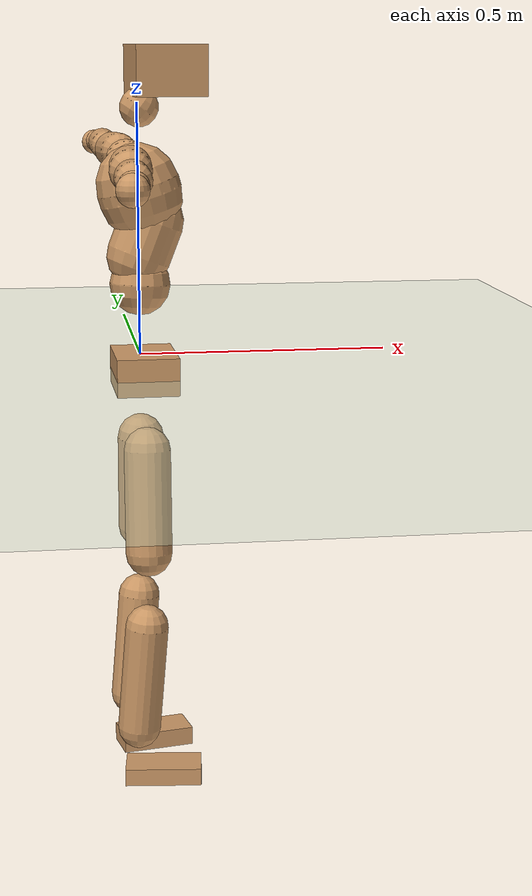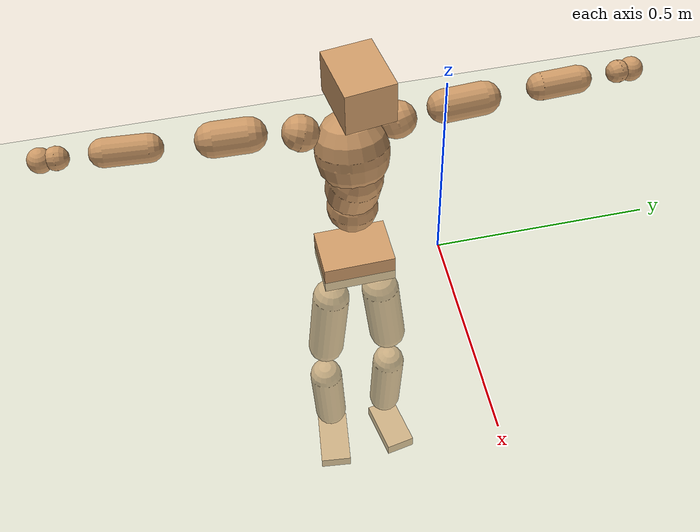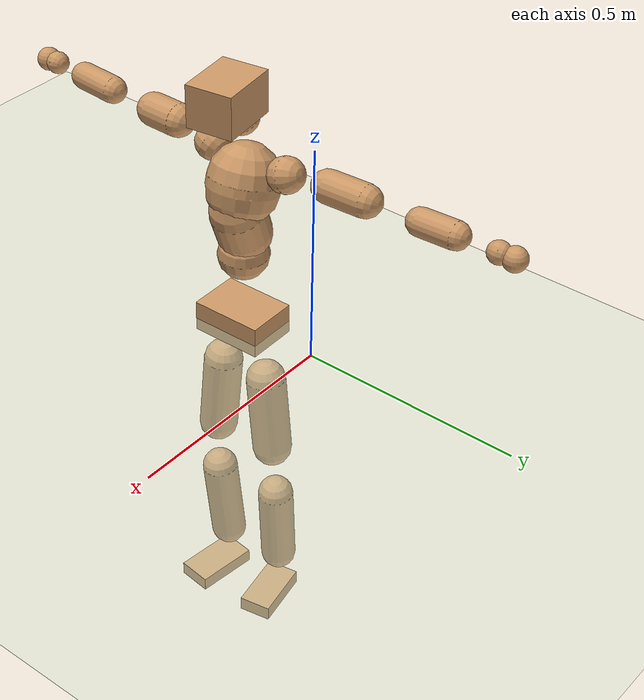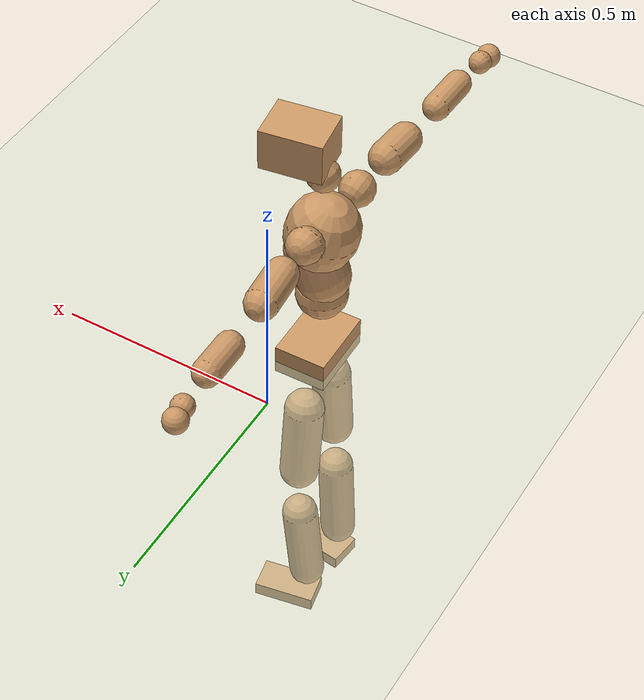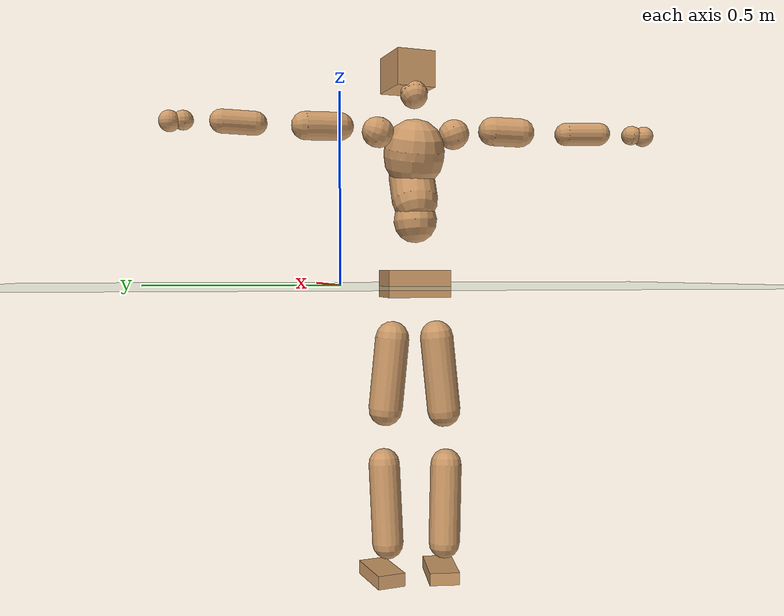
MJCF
<mujoco model="humanoid">
  <compiler coordinate="local" angle="radian"/>
  <default>
    <joint damping="0.0" armature="0.01" stiffness="0.0" limited="true"/>
    <geom conaffinity="1" condim="3" contype="7" margin="0.001" rgba="0.8 0.6 .4 1"/>
  </default>
  <asset>
    <texture type="skybox" builtin="gradient" rgb1=".4 .5 .6" rgb2="0 0 0" width="100" height="100"/>
    <texture builtin="flat" height="1278" mark="cross" markrgb="1 1 1" name="texgeom" random="0.01" rgb1="0.8 0.6 0.4" rgb2="0.8 0.6 0.4" type="cube" width="127"/>
    <texture builtin="checker" height="100" name="texplane" rgb1="0 0 0" rgb2="0.8 0.8 0.8" type="2d" width="100"/>
    <material name="MatPlane" reflectance="0.5" shininess="1" specular="1" texrepeat="60 60" texture="texplane"/>
    <material name="geom" texture="texgeom" texuniform="true"/>
  </asset>
  <worldbody>
    <light cutoff="100" diffuse="1 1 1" dir="-0 0 -1.3" directional="true" exponent="1" pos="0 0 1.3" specular=".1 .1 .1"/>
    <geom conaffinity="1" condim="3" name="floor" pos="0 0 0" rgba="0.8 0.9 0.8 1" size="100 100 .2" type="plane" material="MatPlane"/>
    <body name="Pelvis" pos="-0.0023 -0.1967 0.0162">
      <freejoint name="Pelvis"/>
      <geom type="box" contype="1" conaffinity="1" density="5359.374834" pos="-0.0047 -0.0001 -0.0114" size="0.0587 0.0824 0.0356" quat="0.9999 0.0000 0.0000 0.0103" name="Pelvis"/>
      <body name="L_Hip" pos="-0.0094 0.054 -0.0803">
        <joint name="L_Hip_x" type="hinge" pos="0 0 0" axis="1 0 0" stiffness="1600" damping="160" armature="0.02" range="-180.0000 180.0000"/>
        <joint name="L_Hip_y" type="hinge" pos="0 0 0" axis="0 1 0" stiffness="1600" damping="160" armature="0.02" range="-180.0000 180.0000"/>
        <joint name="L_Hip_z" type="hinge" pos="0 0 0" axis="0 0 1" stiffness="1600" damping="160" armature="0.02" range="-180.0000 180.0000"/>
        <geom type="capsule" contype="1" conaffinity="1" density="2040.816327" size="0.0448" fromto="0.0000 0.0072 -0.0745 0.0000 0.0253 -0.2612" name="L_Hip"/>
        <body name="L_Knee" pos="0 0.0325 -0.3357">
          <joint name="L_Knee_x" type="hinge" pos="0 0 0" axis="1 0 0" stiffness="1600" damping="160" armature="0.02" range="-180.0000 180.0000"/>
          <joint name="L_Knee_y" type="hinge" pos="0 0 0" axis="0 1 0" stiffness="1600" damping="160" armature="0.02" range="-180.0000 180.0000"/>
          <joint name="L_Knee_z" type="hinge" pos="0 0 0" axis="0 0 1" stiffness="1600" damping="160" armature="0.02" range="-180.0000 180.0000"/>
          <geom type="capsule" contype="1" conaffinity="1" density="1234.567901" size="0.0408" fromto="-0.0062 -0.0022 -0.0705 -0.0245 -0.0085 -0.2778" name="L_Knee"/>
          <body name="L_Ankle" pos="-0.0307 -0.0107 -0.3483">
            <joint name="L_Ankle_x" type="hinge" pos="0 0 0" axis="1 0 0" stiffness="1600" damping="160" armature="0.02" range="-180.0000 180.0000"/>
            <joint name="L_Ankle_y" type="hinge" pos="0 0 0" axis="0 1 0" stiffness="1600" damping="160" armature="0.02" range="-180.0000 180.0000"/>
            <joint name="L_Ankle_z" type="hinge" pos="0 0 0" axis="0 0 1" stiffness="1600" damping="160" armature="0.02" range="-180.0000 180.0000"/>
            <geom type="box" contype="1" conaffinity="1" density="1000.000042" pos="0.0512 0.0099 -0.0247" size="0.071 0.0376 0.0178" quat="0.9955 0.0000 0.0000 0.0950" name="L_Ankle"/>
            <body name="L_Toe" pos="0.1024 0.0197 -0.0494">
              <joint name="L_Toe_x" type="hinge" pos="0 0 0" axis="1 0 0" stiffness="1000" damping="100" armature="0.02" range="-180.0000 180.0000"/>
              <joint name="L_Toe_y" type="hinge" pos="0 0 0" axis="0 1 0" stiffness="1000" damping="100" armature="0.02" range="-180.0000 180.0000"/>
              <joint name="L_Toe_z" type="hinge" pos="0 0 0" axis="0 0 1" stiffness="1000" damping="100" armature="0.02" range="-180.0000 180.0000"/>
              <geom type="box" contype="1" conaffinity="1" density="8337906.283234" pos="0.0000 0.0000 0.0257" size="0.0007 0.0019 0.0009" quat="0.9947 0.0000 0.0000 0.1024" name="L_Toe"/>
            </body>
          </body>
        </body>
      </body>
      <body name="R_Hip" pos="-0.006 -0.0526 -0.0798">
        <joint name="R_Hip_x" type="hinge" pos="0 0 0" axis="1 0 0" stiffness="1600" damping="160" armature="0.02" range="-180.0000 180.0000"/>
        <joint name="R_Hip_y" type="hinge" pos="0 0 0" axis="0 1 0" stiffness="1600" damping="160" armature="0.02" range="-180.0000 180.0000"/>
        <joint name="R_Hip_z" type="hinge" pos="0 0 0" axis="0 0 1" stiffness="1600" damping="160" armature="0.02" range="-180.0000 180.0000"/>
        <geom type="capsule" contype="1" conaffinity="1" density="2040.816327" size="0.0442" fromto="-0.0003 -0.0076 -0.0738 -0.0011 -0.0280 -0.2706" name="R_Hip"/>
        <body name="R_Knee" pos="-0.0014 -0.0356 -0.3444">
          <joint name="R_Knee_x" type="hinge" pos="0 0 0" axis="1 0 0" stiffness="1600" damping="160" armature="0.02" range="-180.0000 180.0000"/>
          <joint name="R_Knee_y" type="hinge" pos="0 0 0" axis="0 1 0" stiffness="1600" damping="160" armature="0.02" range="-180.0000 180.0000"/>
          <joint name="R_Knee_z" type="hinge" pos="0 0 0" axis="0 0 1" stiffness="1600" damping="160" armature="0.02" range="-180.0000 180.0000"/>
          <geom type="capsule" contype="1" conaffinity="1" density="1234.567901" size="0.0414" fromto="-0.0058 0.0029 -0.0711 -0.0227 0.0114 -0.2784" name="R_Knee"/>
          <body name="R_Ankle" pos="-0.0285 0.0143 -0.3496">
            <joint name="R_Ankle_x" type="hinge" pos="0 0 0" axis="1 0 0" stiffness="1600" damping="160" armature="0.02" range="-180.0000 180.0000"/>
            <joint name="R_Ankle_y" type="hinge" pos="0 0 0" axis="0 1 0" stiffness="1600" damping="160" armature="0.02" range="-180.0000 180.0000"/>
            <joint name="R_Ankle_z" type="hinge" pos="0 0 0" axis="0 0 1" stiffness="1600" damping="160" armature="0.02" range="-180.0000 180.0000"/>
            <geom type="box" contype="1" conaffinity="1" density="999.999973" pos="0.0522 -0.0059 -0.0204" size="0.0734 0.0401 0.0166" quat="0.9984 0.0000 0.0000 -0.0559" name="R_Ankle"/>
            <body name="R_Toe" pos="0.1045 -0.0117 -0.0407">
              <joint name="R_Toe_x" type="hinge" pos="0 0 0" axis="1 0 0" stiffness="1000" damping="100" armature="0.02" range="-180.0000 180.0000"/>
              <joint name="R_Toe_y" type="hinge" pos="0 0 0" axis="0 1 0" stiffness="1000" damping="100" armature="0.02" range="-180.0000 180.0000"/>
              <joint name="R_Toe_z" type="hinge" pos="0 0 0" axis="0 0 1" stiffness="1000" damping="100" armature="0.02" range="-180.0000 180.0000"/>
              <geom type="box" contype="1" conaffinity="1" density="8513557.552081" pos="0.0000 0.0000 0.0222" size="0.0008 0.002 0.0009" quat="0.9990 0.0000 0.0000 -0.0455" name="R_Toe"/>
            </body>
          </body>
        </body>
      </body>
      <body name="Torso" pos="-0.0127 -0.002 0.0917">
        <joint name="Torso_x" type="hinge" pos="0 0 0" axis="1 0 0" stiffness="2000" damping="200" armature="0.02" range="-180.0000 180.0000"/>
        <joint name="Torso_y" type="hinge" pos="0 0 0" axis="0 1 0" stiffness="2000" damping="200" armature="0.02" range="-180.0000 180.0000"/>
        <joint name="Torso_z" type="hinge" pos="0 0 0" axis="0 0 1" stiffness="2000" damping="200" armature="0.02" range="-180.0000 180.0000"/>
        <geom type="capsule" contype="1" conaffinity="1" density="2040.816327" size="0.0572" fromto="0.0017 0.0019 0.0612 0.0018 0.0020 0.0632" name="Torso"/>
        <body name="Spine" pos="0.0035 0.0039 0.1244">
          <joint name="Spine_x" type="hinge" pos="0 0 0" axis="1 0 0" stiffness="2000" damping="200" armature="0.02" range="-180.0000 180.0000"/>
          <joint name="Spine_y" type="hinge" pos="0 0 0" axis="0 1 0" stiffness="2000" damping="200" armature="0.02" range="-180.0000 180.0000"/>
          <joint name="Spine_z" type="hinge" pos="0 0 0" axis="0 0 1" stiffness="2000" damping="200" armature="0.02" range="-180.0000 180.0000"/>
          <geom type="capsule" contype="1" conaffinity="1" density="2040.816327" size="0.0603" fromto="0.0221 0.0028 0.0560 -0.0037 -0.0005 -0.0094" name="Spine"/>
          <body name="Chest" pos="0.0184 0.0024 0.0466">
            <joint name="Chest_x" type="hinge" pos="0 0 0" axis="1 0 0" stiffness="2000" damping="200" armature="0.02" range="-180.0000 180.0000"/>
            <joint name="Chest_y" type="hinge" pos="0 0 0" axis="0 1 0" stiffness="2000" damping="200" armature="0.02" range="-180.0000 180.0000"/>
            <joint name="Chest_z" type="hinge" pos="0 0 0" axis="0 0 1" stiffness="2000" damping="200" armature="0.02" range="-180.0000 180.0000"/>
            <geom type="capsule" contype="1" conaffinity="1" density="2040.816327" size="0.079" fromto="-0.0219 -0.0015 0.0759 -0.0159 -0.0011 0.0551" name="Chest"/>
            <body name="Neck" pos="-0.0421 -0.0046 0.1865">
              <joint name="Neck_x" type="hinge" pos="0 0 0" axis="1 0 0" stiffness="1000" damping="100" armature="0.02" range="-180.0000 180.0000"/>
              <joint name="Neck_y" type="hinge" pos="0 0 0" axis="0 1 0" stiffness="1000" damping="100" armature="0.02" range="-180.0000 180.0000"/>
              <joint name="Neck_z" type="hinge" pos="0 0 0" axis="0 0 1" stiffness="1000" damping="100" armature="0.02" range="-180.0000 180.0000"/>
              <geom type="capsule" contype="1" conaffinity="1" density="1000" size="0.036" fromto="0.0243 0.0029 0.0319 0.0255 0.0030 0.0335" name="Neck"/>
              <body name="Head" pos="0.0497 0.0059 0.0654">
                <joint name="Head_x" type="hinge" pos="0 0 0" axis="1 0 0" stiffness="1000" damping="100" armature="0.02" range="-180.0000 180.0000"/>
                <joint name="Head_y" type="hinge" pos="0 0 0" axis="0 1 0" stiffness="1000" damping="100" armature="0.02" range="-180.0000 180.0000"/>
                <joint name="Head_z" type="hinge" pos="0 0 0" axis="0 0 1" stiffness="1000" damping="100" armature="0.02" range="-180.0000 180.0000"/>
                <geom type="box" contype="1" conaffinity="1" density="2249.999965" pos="0.0259 0.0039 0.0337" size="0.0677 0.0525 0.0471" quat="0.9972 0.0000 0.0000 0.0754" name="Head"/>
              </body>
            </body>
            <body name="L_Thorax" pos="-0.034 0.0625 0.1042">
              <joint name="L_Thorax_x" type="hinge" pos="0 0 0" axis="1 0 0" stiffness="1000" damping="100" armature="0.02" range="-180.0000 180.0000"/>
              <joint name="L_Thorax_y" type="hinge" pos="0 0 0" axis="0 1 0" stiffness="1000" damping="100" armature="0.02" range="-180.0000 180.0000"/>
              <joint name="L_Thorax_z" type="hinge" pos="0 0 0" axis="0 0 1" stiffness="1000" damping="100" armature="0.02" range="-180.0000 180.0000"/>
              <geom type="capsule" contype="1" conaffinity="1" density="1000" size="0.0394" fromto="-0.0017 0.0374 0.0122 -0.0015 0.0333 0.0109" name="L_Thorax"/>
              <body name="L_Shoulder" pos="-0.0033 0.0707 0.0231">
                <joint name="L_Shoulder_x" type="hinge" pos="0 0 0" axis="1 0 0" stiffness="1000" damping="100" armature="0.02" range="-720.0000 720.0000"/>
                <joint name="L_Shoulder_y" type="hinge" pos="0 0 0" axis="0 1 0" stiffness="1000" damping="100" armature="0.02" range="-720.0000 720.0000"/>
                <joint name="L_Shoulder_z" type="hinge" pos="0 0 0" axis="0 0 1" stiffness="1000" damping="100" armature="0.02" range="-720.0000 720.0000"/>
                <geom type="capsule" contype="1" conaffinity="1" density="1000" size="0.0357" fromto="-0.0056 0.0655 -0.0014 -0.0131 0.1534 -0.0033" name="L_Shoulder"/>
                <body name="L_Elbow" pos="-0.0187 0.2188 -0.0047">
                  <joint name="L_Elbow_x" type="hinge" pos="0 0 0" axis="1 0 0" stiffness="1000" damping="100" armature="0.02" range="-720.0000 720.0000"/>
                  <joint name="L_Elbow_y" type="hinge" pos="0 0 0" axis="0 1 0" stiffness="1000" damping="100" armature="0.02" range="-720.0000 720.0000"/>
                  <joint name="L_Elbow_z" type="hinge" pos="0 0 0" axis="0 0 1" stiffness="1000" damping="100" armature="0.02" range="-720.0000 720.0000"/>
                  <geom type="capsule" contype="1" conaffinity="1" density="1000" size="0.0298" fromto="-0.0014 0.0597 0.0017 -0.0033 0.1416 0.0041" name="L_Elbow"/>
                  <body name="L_Wrist" pos="-0.0046 0.2013 0.0058">
                    <joint name="L_Wrist_x" type="hinge" pos="0 0 0" axis="1 0 0" stiffness="600" damping="60" armature="0.02" range="-180.0000 180.0000"/>
                    <joint name="L_Wrist_y" type="hinge" pos="0 0 0" axis="0 1 0" stiffness="600" damping="60" armature="0.02" range="-180.0000 180.0000"/>
                    <joint name="L_Wrist_z" type="hinge" pos="0 0 0" axis="0 0 1" stiffness="600" damping="60" armature="0.02" range="-180.0000 180.0000"/>
                    <geom type="capsule" contype="1" conaffinity="1" density="1000" size="0.0242" fromto="-0.0053 0.0312 -0.0038 -0.0057 0.0332 -0.0040" name="L_Wrist"/>
                    <body name="L_Hand" pos="-0.011 0.0644 -0.0078">
                      <joint name="L_Hand_x" type="hinge" pos="0 0 0" axis="1 0 0" stiffness="600" damping="60" armature="0.02" range="-180.0000 180.0000"/>
                      <joint name="L_Hand_y" type="hinge" pos="0 0 0" axis="0 1 0" stiffness="600" damping="60" armature="0.02" range="-180.0000 180.0000"/>
                      <joint name="L_Hand_z" type="hinge" pos="0 0 0" axis="0 0 1" stiffness="600" damping="60" armature="0.02" range="-180.0000 180.0000"/>
                      <geom type="sphere" contype="1" conaffinity="1" density="1000" size="0.0261" pos="0.0000 0.0000 0.0000" name="L_Hand"/>
                    </body>
                  </body>
                </body>
              </body>
            </body>
            <body name="R_Thorax" pos="-0.0374 -0.0659 0.1025">
              <joint name="R_Thorax_x" type="hinge" pos="0 0 0" axis="1 0 0" stiffness="1000" damping="100" armature="0.02" range="-180.0000 180.0000"/>
              <joint name="R_Thorax_y" type="hinge" pos="0 0 0" axis="0 1 0" stiffness="1000" damping="100" armature="0.02" range="-180.0000 180.0000"/>
              <joint name="R_Thorax_z" type="hinge" pos="0 0 0" axis="0 0 1" stiffness="1000" damping="100" armature="0.02" range="-180.0000 180.0000"/>
              <geom type="capsule" contype="1" conaffinity="1" density="1000" size="0.0389" fromto="-0.0037 -0.0356 0.0122 -0.0039 -0.0375 0.0129" name="R_Thorax"/>
              <body name="R_Shoulder" pos="-0.0076 -0.0731 0.0251">
                <joint name="R_Shoulder_x" type="hinge" pos="0 0 0" axis="1 0 0" stiffness="1000" damping="100" armature="0.02" range="-720.0000 720.0000"/>
                <joint name="R_Shoulder_y" type="hinge" pos="0 0 0" axis="0 1 0" stiffness="1000" damping="100" armature="0.02" range="-720.0000 720.0000"/>
                <joint name="R_Shoulder_z" type="hinge" pos="0 0 0" axis="0 0 1" stiffness="1000" damping="100" armature="0.02" range="-720.0000 720.0000"/>
                <geom type="capsule" contype="1" conaffinity="1" density="1000" size="0.0373" fromto="-0.0039 -0.0672 -0.0022 -0.0083 -0.1412 -0.0045" name="R_Shoulder"/>
                <body name="R_Elbow" pos="-0.0122 -0.2084 -0.0067">
                  <joint name="R_Elbow_x" type="hinge" pos="0 0 0" axis="1 0 0" stiffness="1000" damping="100" armature="0.02" range="-720.0000 720.0000"/>
                  <joint name="R_Elbow_y" type="hinge" pos="0 0 0" axis="0 1 0" stiffness="1000" damping="100" armature="0.02" range="-720.0000 720.0000"/>
                  <joint name="R_Elbow_z" type="hinge" pos="0 0 0" axis="0 0 1" stiffness="1000" damping="100" armature="0.02" range="-720.0000 720.0000"/>
                  <geom type="capsule" contype="1" conaffinity="1" density="1000" size="0.0302" fromto="-0.0026 -0.0601 0.0015 -0.0065 -0.1500 0.0037" name="R_Elbow"/>
                  <body name="R_Wrist" pos="-0.0091 -0.2101 0.0052">
                    <joint name="R_Wrist_x" type="hinge" pos="0 0 0" axis="1 0 0" stiffness="600" damping="60" armature="0.02" range="-180.0000 180.0000"/>
                    <joint name="R_Wrist_y" type="hinge" pos="0 0 0" axis="0 1 0" stiffness="600" damping="60" armature="0.02" range="-180.0000 180.0000"/>
                    <joint name="R_Wrist_z" type="hinge" pos="0 0 0" axis="0 0 1" stiffness="600" damping="60" armature="0.02" range="-180.0000 180.0000"/>
                    <geom type="capsule" contype="1" conaffinity="1" density="1000" size="0.025" fromto="-0.0039 -0.0314 -0.0028 -0.0041 -0.0334 -0.0029" name="R_Wrist"/>
                    <body name="R_Hand" pos="-0.008 -0.0648 -0.0057">
                      <joint name="R_Hand_x" type="hinge" pos="0 0 0" axis="1 0 0" stiffness="600" damping="60" armature="0.02" range="-180.0000 180.0000"/>
                      <joint name="R_Hand_y" type="hinge" pos="0 0 0" axis="0 1 0" stiffness="600" damping="60" armature="0.02" range="-180.0000 180.0000"/>
                      <joint name="R_Hand_z" type="hinge" pos="0 0 0" axis="0 0 1" stiffness="600" damping="60" armature="0.02" range="-180.0000 180.0000"/>
                      <geom type="sphere" contype="1" conaffinity="1" density="1000" size="0.0263" pos="0.0000 0.0000 0.0000" name="R_Hand"/>
                    </body>
                  </body>
                </body>
              </body>
            </body>
          </body>
        </body>
      </body>
    </body>
  </worldbody>
  <actuator>
    <motor name="L_Hip_x" joint="L_Hip_x" gear="500"/>
    <motor name="L_Hip_y" joint="L_Hip_y" gear="500"/>
    <motor name="L_Hip_z" joint="L_Hip_z" gear="500"/>
    <motor name="L_Knee_x" joint="L_Knee_x" gear="500"/>
    <motor name="L_Knee_y" joint="L_Knee_y" gear="500"/>
    <motor name="L_Knee_z" joint="L_Knee_z" gear="500"/>
    <motor name="L_Ankle_x" joint="L_Ankle_x" gear="500"/>
    <motor name="L_Ankle_y" joint="L_Ankle_y" gear="500"/>
    <motor name="L_Ankle_z" joint="L_Ankle_z" gear="500"/>
    <motor name="L_Toe_x" joint="L_Toe_x" gear="500"/>
    <motor name="L_Toe_y" joint="L_Toe_y" gear="500"/>
    <motor name="L_Toe_z" joint="L_Toe_z" gear="500"/>
    <motor name="R_Hip_x" joint="R_Hip_x" gear="500"/>
    <motor name="R_Hip_y" joint="R_Hip_y" gear="500"/>
    <motor name="R_Hip_z" joint="R_Hip_z" gear="500"/>
    <motor name="R_Knee_x" joint="R_Knee_x" gear="500"/>
    <motor name="R_Knee_y" joint="R_Knee_y" gear="500"/>
    <motor name="R_Knee_z" joint="R_Knee_z" gear="500"/>
    <motor name="R_Ankle_x" joint="R_Ankle_x" gear="500"/>
    <motor name="R_Ankle_y" joint="R_Ankle_y" gear="500"/>
    <motor name="R_Ankle_z" joint="R_Ankle_z" gear="500"/>
    <motor name="R_Toe_x" joint="R_Toe_x" gear="500"/>
    <motor name="R_Toe_y" joint="R_Toe_y" gear="500"/>
    <motor name="R_Toe_z" joint="R_Toe_z" gear="500"/>
    <motor name="Torso_x" joint="Torso_x" gear="500"/>
    <motor name="Torso_y" joint="Torso_y" gear="500"/>
    <motor name="Torso_z" joint="Torso_z" gear="500"/>
    <motor name="Spine_x" joint="Spine_x" gear="500"/>
    <motor name="Spine_y" joint="Spine_y" gear="500"/>
    <motor name="Spine_z" joint="Spine_z" gear="500"/>
    <motor name="Chest_x" joint="Chest_x" gear="500"/>
    <motor name="Chest_y" joint="Chest_y" gear="500"/>
    <motor name="Chest_z" joint="Chest_z" gear="500"/>
    <motor name="Neck_x" joint="Neck_x" gear="500"/>
    <motor name="Neck_y" joint="Neck_y" gear="500"/>
    <motor name="Neck_z" joint="Neck_z" gear="500"/>
    <motor name="Head_x" joint="Head_x" gear="500"/>
    <motor name="Head_y" joint="Head_y" gear="500"/>
    <motor name="Head_z" joint="Head_z" gear="500"/>
    <motor name="L_Thorax_x" joint="L_Thorax_x" gear="500"/>
    <motor name="L_Thorax_y" joint="L_Thorax_y" gear="500"/>
    <motor name="L_Thorax_z" joint="L_Thorax_z" gear="500"/>
    <motor name="L_Shoulder_x" joint="L_Shoulder_x" gear="500"/>
    <motor name="L_Shoulder_y" joint="L_Shoulder_y" gear="500"/>
    <motor name="L_Shoulder_z" joint="L_Shoulder_z" gear="500"/>
    <motor name="L_Elbow_x" joint="L_Elbow_x" gear="500"/>
    <motor name="L_Elbow_y" joint="L_Elbow_y" gear="500"/>
    <motor name="L_Elbow_z" joint="L_Elbow_z" gear="500"/>
    <motor name="L_Wrist_x" joint="L_Wrist_x" gear="500"/>
    <motor name="L_Wrist_y" joint="L_Wrist_y" gear="500"/>
    <motor name="L_Wrist_z" joint="L_Wrist_z" gear="500"/>
    <motor name="L_Hand_x" joint="L_Hand_x" gear="500"/>
    <motor name="L_Hand_y" joint="L_Hand_y" gear="500"/>
    <motor name="L_Hand_z" joint="L_Hand_z" gear="500"/>
    <motor name="R_Thorax_x" joint="R_Thorax_x" gear="500"/>
    <motor name="R_Thorax_y" joint="R_Thorax_y" gear="500"/>
    <motor name="R_Thorax_z" joint="R_Thorax_z" gear="500"/>
    <motor name="R_Shoulder_x" joint="R_Shoulder_x" gear="500"/>
    <motor name="R_Shoulder_y" joint="R_Shoulder_y" gear="500"/>
    <motor name="R_Shoulder_z" joint="R_Shoulder_z" gear="500"/>
    <motor name="R_Elbow_x" joint="R_Elbow_x" gear="500"/>
    <motor name="R_Elbow_y" joint="R_Elbow_y" gear="500"/>
    <motor name="R_Elbow_z" joint="R_Elbow_z" gear="500"/>
    <motor name="R_Wrist_x" joint="R_Wrist_x" gear="500"/>
    <motor name="R_Wrist_y" joint="R_Wrist_y" gear="500"/>
    <motor name="R_Wrist_z" joint="R_Wrist_z" gear="500"/>
    <motor name="R_Hand_x" joint="R_Hand_x" gear="500"/>
    <motor name="R_Hand_y" joint="R_Hand_y" gear="500"/>
    <motor name="R_Hand_z" joint="R_Hand_z" gear="500"/>
  </actuator>
  <contact>
    <exclude body1="Torso" body2="Chest"/>
    <exclude body1="Head" body2="Chest"/>
    <exclude body1="R_Knee" body2="R_Toe"/>
    <exclude body1="R_Knee" body2="L_Ankle"/>
    <exclude body1="R_Knee" body2="L_Toe"/>
    <exclude body1="L_Knee" body2="L_Toe"/>
    <exclude body1="L_Knee" body2="R_Ankle"/>
    <exclude body1="L_Knee" body2="R_Toe"/>
    <exclude body1="L_Shoulder" body2="Chest"/>
    <exclude body1="R_Shoulder" body2="Chest"/>
  </contact>
  <sensor/>
  <size njmax="700" nconmax="700"/>
</mujoco>
